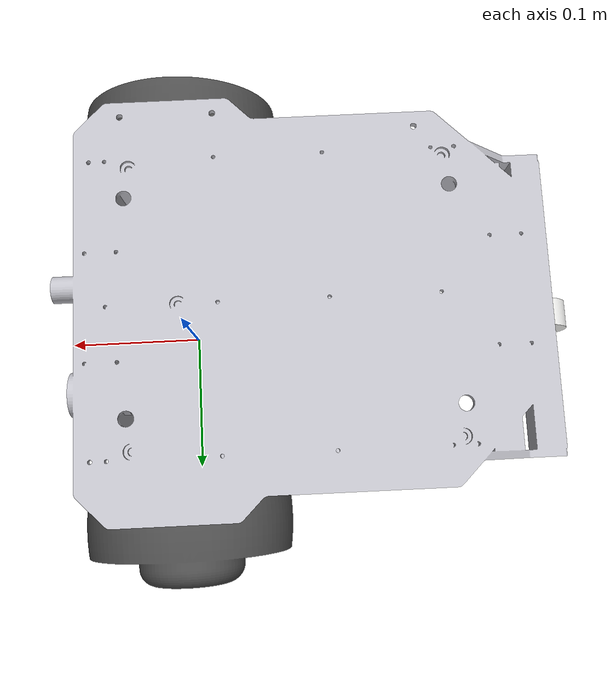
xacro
<?xml version="1.0"?>
<robot name="mega3" xmlns:xacro="http://www.ros.org/wiki/xacro">

  <xacro:arg name="use_ros2_control" default="true" />
  <xacro:arg name="lidar" default="true" />
  <xacro:property name="tg30_enabled" value="false" />

  <xacro:include filename="$(find megarover_description)/urdf/materials.xacro" />
  <xacro:include filename="$(find megarover_description)/urdf/mega3.gazebo" />
  <xacro:if value="$(arg use_ros2_control)">
    <xacro:include filename="$(find megarover_description)/urdf/mega3_ros2_control.xacro" />
  </xacro:if>

  <!-- OPTION LRF TG30 -->

  <!-- OPTION  bumper sensor -->

  <!-- OPTION  camera stay -->

  <!-- OPTION  AMIR 740 (disabled by default because of interference with camera stay)-->

  <link name="base_footprint" />

  <joint name="base_joint" type="fixed">
    <parent link="base_footprint" />
    <child link="base_link" />
    <origin xyz="-0.1 0 0" rpy="0 0 0" />
  </joint>

  <link name="base_link">
    <inertial>
      <origin xyz="0.008652929776791014 0.001107013730491935 0.10307586165229349" rpy="0 0 -1.5707963267948966" />
      <mass value="3.2472141930264886" />
      <inertia ixx="0.03499380367357023" iyy="0.02389566038235242" izz="0.04961607321095147"
        ixy="0.0004073496120585377" iyz="-0.0008864404421181438"
        ixz="5.121736313081106e-05" />
    </inertial>
    <visual>
      <origin xyz="0 0 0" rpy="0 0 -1.5708" />
      <geometry>
        <mesh filename="package://megarover_description/meshes/mega3/base_link.stl" scale="0.001 0.001 0.001" />
      </geometry>
      <material name="silver" />
    </visual>
    <collision>
      <origin xyz="0 0 0" rpy="0 0 -1.5708" />
      <geometry>
        <mesh filename="package://megarover_description/meshes/mega3/base_link.stl" scale="0.001 0.001 0.001" />
      </geometry>
    </collision>
  </link>

  <!-- CAD +Y forward is rotated into the existing mega3 +X frame. -->
  <joint name="battery_joint" type="fixed">
    <origin xyz="0 0 0" rpy="0 0 -1.5707963267948966" />
    <parent link="base_link" />
    <child link="Battery" />
  </joint>

  <link name="Battery">
    <inertial>
      <origin xyz="-8.617707998157631e-18 0.008998698470897024 0.08943706012717803" rpy="0 0 0" />
      <mass value="8.245147502236165" />
      <inertia ixx="0.0214853104155929" iyy="0.03313493288601588" izz="0.04284993321973867"
        ixy="-7.034280604820041e-18" iyz="4.959248083875184e-07" ixz="-6.705434520297627e-19" />
    </inertial>
    <visual>
      <origin xyz="0 0 0" rpy="0 0 0" />
      <geometry>
        <mesh filename="package://megarover_description/meshes/mega3/Battery.stl" scale="0.001 0.001 0.001" />
      </geometry>
      <material name="silver" />
    </visual>
    <collision>
      <origin xyz="0 0 0" rpy="0 0 0" />
      <geometry>
        <mesh filename="package://megarover_description/meshes/mega3/Battery.stl" scale="0.001 0.001 0.001" />
      </geometry>
    </collision>
  </link>

  <joint name="caster_swivel_joint" type="continuous">
    <origin xyz="-0.13 0 0.0814" rpy="0 0 -1.5707963267948966" />
    <parent link="base_link" />
    <child link="Caster_Frame" />
    <axis xyz="0 0 -1" />
    <limit effort="100.0" velocity="100.0" />
  </joint>

  <link name="Caster_Frame">
    <inertial>
      <origin xyz="-2.9997809438943724e-18 0.0008380877975086853 -0.019114933984371356" rpy="0 0 0" />
      <mass value="0.18593892620957955" />
      <inertia ixx="4.784843078569148e-05" iyy="4.884288359081478e-05" izz="3.484845036761698e-05"
        ixy="-3.951178862922994e-20" iyz="-4.376302309193466e-06" ixz="-3.4741117944938427e-20" />
    </inertial>
    <visual>
      <origin xyz="0 0.13 -0.0814" rpy="0 0 0" />
      <geometry>
        <mesh filename="package://megarover_description/meshes/mega3/Caster_Frame.stl" scale="0.001 0.001 0.001" />
      </geometry>
      <material name="silver" />
    </visual>
    <collision>
      <origin xyz="0 0.13 -0.0814" rpy="0 0 0" />
      <geometry>
        <mesh filename="package://megarover_description/meshes/mega3/Caster_Frame.stl" scale="0.001 0.001 0.001" />
      </geometry>
    </collision>
  </link>

  <joint name="caster_wheel_joint" type="continuous">
    <origin xyz="0.014 -0.021 -0.0489" rpy="0 0 0" />
    <parent link="Caster_Frame" />
    <child link="Caster_Wheel" />
    <axis xyz="1 0 0" />
    <limit effort="100.0" velocity="100.0" />
  </joint>

  <link name="Caster_Wheel">
    <inertial>
      <origin xyz="-0.014 2.7755575615628914e-17 0.0" rpy="0 0 0" />
      <mass value="0.07034811349550506" />
      <inertia ixx="3.7152597439811096e-05" iyy="2.092123583642218e-05" izz="2.0921235836423007e-05"
        ixy="9.038103598868473e-21" iyz="-3.2526065174565133e-19" ixz="0.0" />
    </inertial>
    <visual>
      <origin xyz="-0.014 0.151 -0.0325" rpy="0 0 0" />
      <geometry>
        <mesh filename="package://megarover_description/meshes/mega3/Caster_Wheel.stl" scale="0.001 0.001 0.001" />
      </geometry>
      <material name="caster_wheel">
        <color rgba="0.960784 0.960784 0.952941 1" />
      </material>
    </visual>
    <collision>
      <origin xyz="-0.014 0.151 -0.0325" rpy="0 0 0" />
      <geometry>
        <mesh filename="package://megarover_description/meshes/mega3/Caster_Wheel.stl" scale="0.001 0.001 0.001" />
      </geometry>
    </collision>
  </link>

  <joint name="left_wheel_joint" type="continuous">
    <origin xyz="0.1 0.136 0.07" rpy="0 0 0" />
    <parent link="base_link" />
    <child link="left_wheel_1" />
    <axis xyz="0.0 1.0 0.0" />
  </joint>

  <link name="left_wheel_1">
    <inertial>
      <origin xyz="0 0 0" rpy="0 0 0" />
      <mass value="1.24" />
      <inertia ixx="1.655435e-03" iyy="2.678186e-03" izz="1.655435e-03"
        ixy="0.0" iyz="0.0"
        ixz="0.0" />
    </inertial>
    <visual>
      <origin xyz="-0.1 -0.136 -0.07" rpy="0 0 -1.5708" />
      <geometry>
        <mesh filename="package://megarover_description/meshes/mega3/left_wheel_1.stl" scale="0.001 0.001 0.001" />
      </geometry>
      <material name="dark_grey" />
    </visual>
    <collision>
      <origin xyz="-0.1 -0.136 -0.07" rpy="0 0 -1.5708" />
      <geometry>
        <mesh filename="package://megarover_description/meshes/mega3/left_wheel_1.stl" scale="0.001 0.001 0.001" />
      </geometry>
    </collision>
  </link>

  <joint name="right_wheel_joint" type="continuous">
    <origin xyz="0.1 -0.136 0.07" rpy="0 0 0" />
    <parent link="base_link" />
    <child link="right_wheel_1" />
    <axis xyz="0.0 1.0 0.0" />
  </joint>

  <link name="right_wheel_1">
    <inertial>
      <origin xyz="0 0 0" rpy="0 0 0" />
      <mass value="1.24" />
      <inertia ixx="1.655421e-03" iyy="2.678055e-03" izz="1.655420e-03"
        ixy="0.0" iyz="0.0"
        ixz="0.0" />
    </inertial>
    <visual>
      <origin xyz="-0.1 0.136 -0.07" rpy="0 0 -1.5708" />
      <geometry>
        <mesh filename="package://megarover_description/meshes/mega3/right_wheel_1.stl" scale="0.001 0.001 0.001" />
      </geometry>
      <material name="dark_grey" />
    </visual>
    <collision>
      <origin xyz="-0.1 0.136 -0.07" rpy="0 0 -1.5708" />
      <geometry>
        <mesh filename="package://megarover_description/meshes/mega3/right_wheel_1.stl" scale="0.001 0.001 0.001" />
      </geometry>
    </collision>
  </link>

  <xacro:gazebo_sensors />
</robot>

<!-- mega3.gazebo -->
<robot name="mega3" xmlns:xacro="http://www.ros.org/wiki/xacro">

  <xacro:if value="$(arg use_ros2_control)">
    <gazebo>
      <plugin name="gz_ros2_control::GazeboSimROS2ControlPlugin" filename="gz_ros2_control-system">
        <parameters>$(find megarover_description)/params/controllers.yaml</parameters>
      </plugin>
      <plugin name="gz::sim::systems::OdometryPublisher" filename="gz-sim-odometry-publisher-system">
        <odom_frame>odom</odom_frame>
        <robot_base_frame>base_footprint</robot_base_frame>
        <odom_topic>/sim_odom</odom_topic>
        <odom_publish_frequency>50</odom_publish_frequency>
        <dimensions>2</dimensions>
      </plugin>
    </gazebo>
  </xacro:if>

  <gazebo reference="base_link">
    <mu1>0.05</mu1>
    <mu2>0.05</mu2>
  </gazebo>

  <gazebo reference="right_wheel_1">
    <mu1>1.5</mu1>
    <mu2>0.8</mu2>
  </gazebo>

  <gazebo reference="left_wheel_1">
    <mu1>1.5</mu1>
    <mu2>0.8</mu2>
  </gazebo>

  <!-- Existing model-only scanner, declared natively when TG30 is absent. -->
  <xacro:macro name="gazebo_sensors" params="">
    <xacro:if value="$(arg use_ros2_control)">
      <xacro:if value="$(arg lidar)">
        <xacro:unless value="${tg30_enabled}">
          <link name="virtual_lidar_link" />
          <joint name="virtual_lidar_joint" type="fixed">
            <parent link="base_link" /><child link="virtual_lidar_link" />
            <origin xyz="0.15 0 0.25" rpy="0 0 0" />
          </joint>
          <gazebo reference="base_link">
            <sensor name="virtual_lidar" type="gpu_lidar">
              <pose>0.15 0 0.25 0 0 0</pose>
              <topic>/scan</topic><gz_frame_id>virtual_lidar_link</gz_frame_id>
              <update_rate>10</update_rate><always_on>true</always_on>
              <lidar>
                <scan><horizontal>
                  <samples>720</samples><resolution>1</resolution>
                  <min_angle>-3.14159265</min_angle><max_angle>3.14159265</max_angle>
                </horizontal></scan>
                <range><min>0.05</min><max>30</max><resolution>0.01</resolution></range>
              </lidar>
            </sensor>
          </gazebo>
        </xacro:unless>
      </xacro:if>
    </xacro:if>
  </xacro:macro>

</robot>
